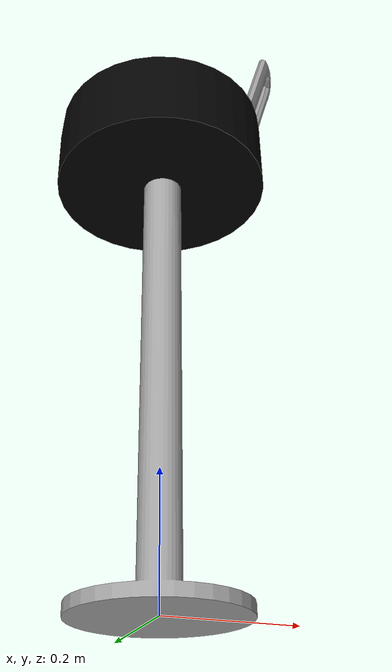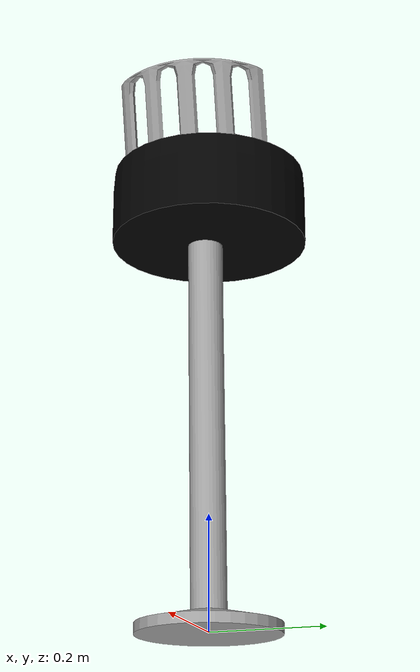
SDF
<?xml version="1.0" ?>
<sdf version="1.4">
    <model name='high_chair'>
      <link name='link'>
        <pose>0.0 0.0 0.0 0 0 0</pose>
        <inertial>
          <mass>10.0</mass>
          <inertia>
            <ixx>1</ixx>
            <ixy>0</ixy>
            <ixz>0</ixz>
            <iyy>1</iyy>
            <iyz>0</iyz>
            <izz>1</izz>
          </inertia>
        </inertial>
        <visual name='seat'>
          <pose>0 0 0 0 0 0</pose>
          <geometry>
            <mesh>
              <uri>model://high_chair/meshes/seat.dae</uri>
            </mesh>
          </geometry>
          <material>
            <name>cloth</name>
            <pbr>
              <metal>
                <albedo_map>model://base_materials/cloth/textures/cloth_black.png</albedo_map>
                <max_anisotropy>16</max_anisotropy>
                <scale>0.1 0.1</scale>
                <metalness>0</metalness>
              </metal>
            </pbr>
          </material>
        </visual>
        <collision name='collision_seat'>
          <pose>0 0 0 0 0 0</pose>
          <geometry>
            <mesh>
              <uri>model://high_chair/meshes/seat.dae</uri>
            </mesh>
          </geometry>
          <max_contacts>10</max_contacts>
          <surface>
            <bounce/>
            <friction>
              <ode/>
            </friction>
            <contact>
              <ode/>
            </contact>
          </surface>
        </collision>
        <visual name='back'>
          <pose>0 0 0 0 0 0</pose>
          <geometry>
            <mesh>
              <uri>model://high_chair/meshes/back.dae</uri>
            </mesh>
          </geometry>
          <material>
          </material>
        </visual>
        <collision name='collision_back'>
          <pose>0 0 0 0 0 0</pose>
          <geometry>
            <mesh>
              <uri>model://high_chair/meshes/back.dae</uri>
            </mesh>
          </geometry>
          <max_contacts>10</max_contacts>
          <surface>
            <bounce/>
            <friction>
              <ode/>
            </friction>
            <contact>
              <ode/>
            </contact>
          </surface>
        </collision>
        <visual name='poll'>
          <pose>0 0 0 0 0 0</pose>
          <geometry>
            <mesh>
              <uri>model://high_chair/meshes/poll.dae</uri>
            </mesh>
          </geometry>
          <material>
          </material>
        </visual>
        <collision name='collision_poll'>
          <pose>0 0 0 0 0 0</pose>
          <geometry>
            <mesh>
              <uri>model://high_chair/meshes/poll.dae</uri>
            </mesh>
          </geometry>
          <max_contacts>10</max_contacts>
          <surface>
            <bounce/>
            <friction>
              <ode/>
            </friction>
            <contact>
              <ode/>
            </contact>
          </surface>
        </collision>
        <velocity_decay>
          <linear>0</linear>
          <angular>0</angular>
        </velocity_decay>
        <self_collide>0</self_collide>
        <kinematic>0</kinematic>
        <gravity>1</gravity>
      </link>
      <static>1</static>
    </model>
</sdf>
